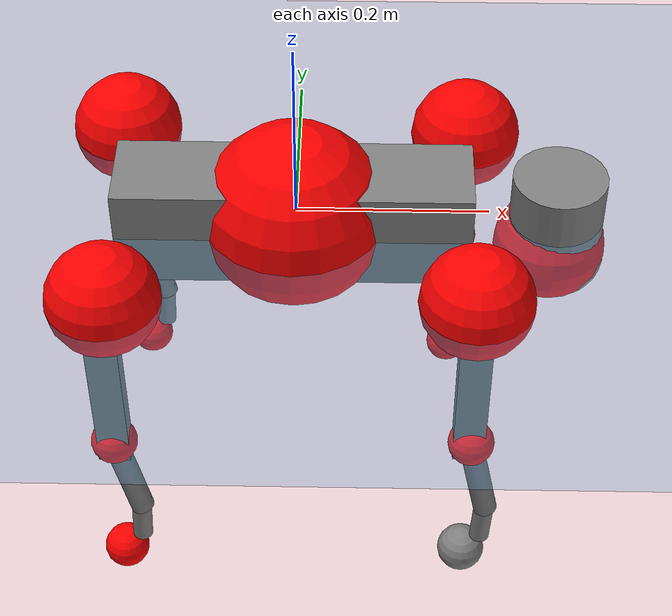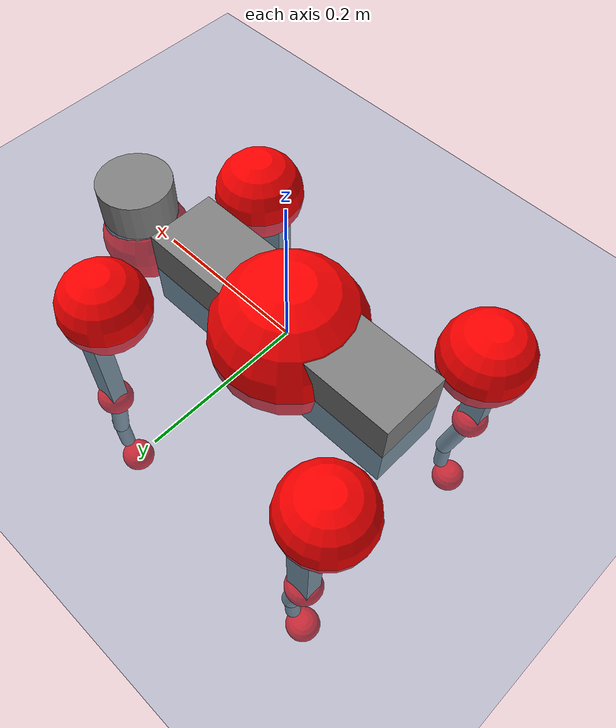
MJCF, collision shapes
<mujoco model="go2">
  <compiler angle="radian" assetdir="assets" balanceinertia="true" inertiafromgeom="false"/>

  <option timestep="0.005" density="1.2" viscosity="2e-05"/>

  <size nkey="1"/>

  <visual>
    <quality shadowsize="8192"/>
    <map shadowclip="0.5"/>
  </visual>

  <default>
    <default class="/">
      <geom contype="0" conaffinity="0" group="1" solref="-1000 -80"/>
      <site size="0.01 0.005 0.005" group="5"/>
      <general forcelimited="true" biastype="affine" gainprm="20" biasprm="0 -20 -0.5"/>
      <default class="go2">
        <joint armature="0.01" damping="0.01" frictionloss="0.2"/>
        <geom condim="1" margin="0.001"/>
        <default class="visual">
          <geom type="mesh" group="2"/>
        </default>
        <default class="collision">
          <geom group="3"/>
          <default class="foot">
            <geom size="0.022 0 0" condim="6" priority="1" friction="0.8 0.02 0.01" solimp="0.015 1 0.022"/>
          </default>
        </default>
        <default class="reward_collision_sphere">
          <geom group="5" rgba="1 0 0 1"/>
        </default>
      </default>
    </default>
  </default>

  <asset>
    <texture type="skybox" colorspace="auto" name="//unnamed_texture_0" builtin="gradient" rgb1="0.95 0.95 0.95" rgb2="0.95 0.95 0.95" width="100" height="600"/>
    <texture type="2d" colorspace="auto" name="texplane" builtin="checker" rgb1="0.345 0.575 0.748" rgb2="0.345 0.575 0.748" markrgb="1 1 1" width="512" height="512"/>
    <material name="MatPlane" class="/" texture="texplane" texuniform="true" texrepeat="2 2" specular="0.9"/>
    <material name="metal" class="/" rgba="0.9 0.95 0.95 1"/>
    <material name="black" class="/" rgba="0 0 0 1"/>
    <material name="white" class="/"/>
    <material name="gray" class="/" rgba="0.671705 0.692426 0.77427 1"/>
    <mesh name="base_0" class="/" file="base_0.obj"/>
    <mesh name="base_1" class="/" file="base_1.obj"/>
    <mesh name="base_2" class="/" file="base_2.obj"/>
    <mesh name="base_3" class="/" file="base_3.obj"/>
    <mesh name="base_4" class="/" file="base_4.obj"/>
    <mesh name="hip_0" class="/" file="hip_0.obj"/>
    <mesh name="hip_1" class="/" file="hip_1.obj"/>
    <mesh name="thigh_0" class="/" file="thigh_0.obj"/>
    <mesh name="thigh_1" class="/" file="thigh_1.obj"/>
    <mesh name="thigh_mirror_0" class="/" file="thigh_mirror_0.obj"/>
    <mesh name="thigh_mirror_1" class="/" file="thigh_mirror_1.obj"/>
    <mesh name="calf_0" class="/" file="calf_0.obj"/>
    <mesh name="calf_1" class="/" file="calf_1.obj"/>
    <mesh name="calf_mirror_0" class="/" file="calf_mirror_0.obj"/>
    <mesh name="calf_mirror_1" class="/" file="calf_mirror_1.obj"/>
    <mesh name="foot" class="/" file="foot.obj"/>
  </asset>

  <worldbody>
    <geom name="floor" class="/" size="100 100 0.125" type="plane" group="0" material="MatPlane"/>
    <light name="toplight_shadow" class="/" pos="0 0 5" dir="0.0990148 0.0990148 -0.990148" type="directional" ambient="0.04 0.04 0.04" diffuse="0.55 0.55 0.55" specular="0.12 0.12 0.12"/>
    <light name="toplight_fill" class="/" pos="0 0 5" dir="0.0990148 0.0990148 -0.990148" type="directional" castshadow="false" ambient="0.04 0.04 0.04" diffuse="0.3 0.3 0.3" specular="0.08 0.08 0.08"/>
    <body name="trunk" childclass="go2" pos="-0.00165419 -0.00283819 -0.00165935" quat="0.999999 0.000691468 -0.000237631 -0.00109433">
      <inertial pos="0.018725 0.000732795 -0.00463503" quat="0.00415034 0.709321 0.000843974 0.704873" mass="6.47662" diaginertia="0.083077 0.178937 0.0107017"/>
      <joint name="//unnamed_joint_0" type="free" armature="0" damping="0" frictionloss="0"/>
      <geom name="//unnamed_geom_1" class="visual" material="black" mesh="base_0"/>
      <geom name="//unnamed_geom_2" class="visual" material="black" mesh="base_1"/>
      <geom name="//unnamed_geom_3" class="visual" material="black" mesh="base_2"/>
      <geom name="//unnamed_geom_4" class="visual" material="white" mesh="base_3"/>
      <geom name="//unnamed_geom_5" class="visual" material="gray" mesh="base_4"/>
      <geom name="trunk_1" class="collision" size="0.183486 0.0456031 0.0556017" type="box"/>
      <geom name="trunk_2" class="collision" size="0.0487734 0.0438961" pos="0.271406 0 0.00843108" type="cylinder"/>
      <geom name="trunk_3" class="collision" size="0.045847" pos="0.279024 0 -0.0505865"/>
      <geom name="//unnamed_geom_9" class="reward_collision_sphere" size="0.0975468"/>
      <geom name="//unnamed_geom_10" class="reward_collision_sphere" size="0.0585281" pos="0.266644 0 -0.0379399"/>
      <site name="imu" pos="-0.02525 0.00709823 0.0331797" size="0.00975468"/>
      <camera name="track" pos="0 -2.26199 0" quat="0.707107 0.707107 0 0" mode="trackcom"/>
      <camera name="ego_camera" pos="0.297118 0 0.0379399" quat="-0.5 -0.5 0.5 0.5"/>
      <body name="FL_hip" pos="0.181195 0.0499259 0.00324428" quat="1 0.000322384 -0.000656576 0.000237836">
        <inertial pos="-0.00639183 5.86407e-05 -0.00271553" quat="0.497116 0.501816 0.505437 0.495571" mass="0.655493" diaginertia="0.000719296 0.00110769 0.000217238"/>
        <joint name="FL_hip_joint" pos="0 0 0" axis="0.999962 -0.00246285 0.00839516" range="-1.03191 1.00103" armature="0.0110995" damping="0" frictionloss="0.213726"/>
        <geom name="//unnamed_geom_11" class="visual" material="metal" mesh="hip_0"/>
        <geom name="//unnamed_geom_12" class="visual" material="gray" mesh="hip_1"/>
        <geom name="//unnamed_geom_13" class="collision" size="0.0448715 0.0195094" pos="0 0.0904796 0" quat="0.707107 0.707107 0 0" type="cylinder"/>
        <geom name="//unnamed_geom_14" class="reward_collision_sphere" size="0.0585281" pos="0 0.0791697 0"/>
        <body name="FL_thigh" pos="-0.0012411 0.107784 0.00315842" quat="1 5.54456e-06 -0.00040748 -0.000105281">
          <inertial pos="-0.00196074 -0.0261581 -0.0253526" quat="0.830114 0.0809988 -0.0174782 0.551402" mass="1.0727" diaginertia="0.00475104 0.0109396 0.000369259"/>
          <joint name="FL_thigh_joint" pos="0 0 0" axis="0.0132684 0.999899 0.00502973" stiffness="0.0027352" range="-1.62049 3.54508" armature="0.0111519" damping="0" frictionloss="0.218003"/>
          <geom name="//unnamed_geom_15" class="visual" material="metal" mesh="thigh_0"/>
          <geom name="//unnamed_geom_16" class="visual" material="gray" mesh="thigh_1"/>
          <geom name="//unnamed_geom_17" class="collision" size="0.103887 0.0119495 0.016583" pos="0 0 -0.089791" quat="0.707107 0 0.707107 0" type="box"/>
          <body name="FL_calf" pos="-0.000898521 -0.000257524 -0.179202" quat="0.999999 0.00113223 -0.000663387 0.000385544">
            <inertial pos="0.0086701 0.00202092 -0.121862" quat="0.71084 0.00691072 -0.0146439 0.703167" mass="0.225967" diaginertia="0.00115288 0.00279334 2.18613e-05"/>
            <joint name="FL_calf_joint" pos="0 0 0" axis="-0.000567873 1 -0.000722803" stiffness="0.00220647" range="-2.70042 -0.888421" armature="0.00836842" damping="0.00759639" frictionloss="0.204118"/>
            <geom name="//unnamed_geom_18" class="visual" material="gray" mesh="calf_0"/>
            <geom name="//unnamed_geom_19" class="visual" material="black" mesh="calf_1"/>
            <geom name="FL_calf0" class="collision" size="0.0117056 0.0585281" pos="0.00761841 0 -0.0505865" quat="0.994493 0 -0.104807 0" type="cylinder"/>
            <geom name="//unnamed_geom_21" class="collision" size="0.0107302 0.0317027" pos="0.019046 0 -0.12478" quat="0.999688 0 0.0249974 0" type="cylinder"/>
            <geom name="//unnamed_geom_22" class="visual" pos="0 0 -0.179582" quat="1 0 0 0" material="black" mesh="foot"/>
            <geom name="FL_foot" class="foot" size="0.0199794" pos="-0.0019046 0 -0.179582"/>
            <geom name="//unnamed_geom_24" class="reward_collision_sphere" size="0.0243867"/>
            <geom name="//unnamed_geom_25" class="reward_collision_sphere" size="0.0243867" pos="-0.0019046 0 -0.179582"/>
            <site name="FL_foot" class="foot" pos="-0.0019046 0 -0.179582" size="0.00975468"/>
          </body>
        </body>
      </body>
      <body name="FR_hip" pos="0.184849 -0.0505028 0.00182762" quat="1 -0.000268689 0.000740694 -0.000135248">
        <inertial pos="-0.00245528 -0.00178795 -0.000252254" quat="0.498978 0.504897 0.501233 0.494839" mass="0.655774" diaginertia="0.000724133 0.00114429 0.000204322"/>
        <joint name="FR_hip_joint" pos="0 0 0" axis="0.999989 -0.000377756 -0.00457631" range="-0.996202 1.05308" armature="0.00912113" damping="0.00886465" frictionloss="0.210355"/>
        <geom name="//unnamed_geom_26" class="visual" pos="0 2.50795e-09 1.07571e-07" quat="4.63268e-05 1 0 0" material="metal" mesh="hip_0"/>
        <geom name="//unnamed_geom_27" class="visual" pos="0 4.06569e-09 -2.66065e-07" quat="4.63268e-05 1 0 0" material="gray" mesh="hip_1"/>
        <geom name="//unnamed_geom_28" class="collision" size="0.0448715 0.0195094" pos="0 -0.0904796 0" quat="0.707107 0.707107 0 0" type="cylinder"/>
        <geom name="//unnamed_geom_29" class="reward_collision_sphere" size="0.0585281" pos="0 -0.0791697 0"/>
        <body name="FR_thigh" pos="-8.02389e-05 -0.10822 0.0024842" quat="0.999999 0.00065135 -0.000703848 -0.000465519">
          <inertial pos="-0.00627738 0.0239955 -0.0281533" quat="0.551939 -0.0243396 0.0862968 0.82905" mass="1.03602" diaginertia="0.0046074 0.0103539 0.000355558"/>
          <joint name="FR_thigh_joint" pos="0 0 0" axis="0.0100273 -0.99995 -8.03911e-05" stiffness="0.00403377" range="-3.50619 1.53482" armature="0.00968714" damping="0.0162454" frictionloss="0.214203"/>
          <geom name="//unnamed_geom_30" class="visual" material="metal" mesh="thigh_mirror_0"/>
          <geom name="//unnamed_geom_31" class="visual" material="gray" mesh="thigh_mirror_1"/>
          <geom name="//unnamed_geom_32" class="collision" size="0.103887 0.0119495 0.016583" pos="0 0 -0.089791" quat="0.707107 0 0.707107 0" type="box"/>
          <body name="FR_calf" pos="0.00265725 -0.00222918 -0.177876" quat="1 -0.000100222 1.17154e-05 5.37161e-05">
            <inertial pos="0.00847196 0.000992296 -0.120178" quat="0.700448 -0.00571486 0.0022546 0.713677" mass="0.232491" diaginertia="0.00124166 0.00269713 2.31968e-05"/>
            <joint name="FR_calf_joint" pos="0 0 0" axis="0.00225405 -0.999973 -0.0070612" range="0.838335 2.73733" armature="0.00935646" damping="0.0227361" frictionloss="0.197388"/>
            <geom name="//unnamed_geom_33" class="visual" material="gray" mesh="calf_mirror_0"/>
            <geom name="//unnamed_geom_34" class="visual" material="black" mesh="calf_mirror_1"/>
            <geom name="FR_calf0" class="collision" size="0.0126811 0.0585281" pos="0.00952301 0 -0.0505865" quat="0.995004 0 -0.0998334 0" type="cylinder"/>
            <geom name="//unnamed_geom_36" class="collision" size="0.0107302 0.0317027" pos="0.019046 0 -0.12478" quat="0.999688 0 0.0249974 0" type="cylinder"/>
            <geom name="//unnamed_geom_37" class="visual" pos="0 0 -0.179582" quat="1 0 0 0" material="black" mesh="foot"/>
            <geom name="FR_foot" class="foot" size="0.0256098" pos="-0.0019046 0 -0.179582"/>
            <geom name="//unnamed_geom_39" class="reward_collision_sphere" size="0.0243867"/>
            <geom name="//unnamed_geom_40" class="reward_collision_sphere" size="0.0243867" pos="-0.0019046 0 -0.179582"/>
            <site name="FR_foot" class="foot" pos="-0.0019046 0 -0.179582" size="0.00975468"/>
          </body>
        </body>
      </body>
      <body name="RL_hip" pos="-0.185804 0.0543414 0.00305183" quat="1 -0.00018585 -0.000217104 7.66367e-05">
        <inertial pos="0.00715376 0.00330456 -0.000969731" quat="0.505507 0.498279 0.496944 0.499226" mass="0.623606" diaginertia="0.000687048 0.00113217 0.000201928"/>
        <joint name="RL_hip_joint" pos="0 0 0" axis="-0.999743 -0.02268 -0.000362361" stiffness="0.0124516" range="-1.03612 1.02543" armature="0.00982633" damping="0.0115715" frictionloss="0.210458"/>
        <geom name="//unnamed_geom_41" class="visual" pos="-9.51244e-10 0 -1.86466e-07" quat="4.63268e-05 0 1 0" material="metal" mesh="hip_0"/>
        <geom name="//unnamed_geom_42" class="visual" pos="-1.54208e-09 0 -1.65369e-07" quat="4.63268e-05 0 1 0" material="gray" mesh="hip_1"/>
        <geom name="//unnamed_geom_43" class="collision" size="0.0448715 0.0195094" pos="0 0.0904796 0" quat="0.707107 0.707107 0 0" type="cylinder"/>
        <geom name="//unnamed_geom_44" class="reward_collision_sphere" size="0.0585281" pos="0 0.0791697 0"/>
        <body name="RL_thigh" pos="-0.00142299 0.110181 0.00268112" quat="1 0.000752532 -0.000125989 -0.000324719">
          <inertial pos="-0.00354914 -0.0243104 -0.0269984" quat="0.831645 0.0822376 -0.00914711 0.549108" mass="1.03733" diaginertia="0.00470464 0.0104612 0.000380326"/>
          <joint name="RL_thigh_joint" pos="0 0 0" axis="-0.0113253 0.999931 0.00309759" range="-0.504565 4.56272" armature="0.0085101" damping="8.94598e-05" frictionloss="0.182455"/>
          <geom name="//unnamed_geom_45" class="visual" material="metal" mesh="thigh_0"/>
          <geom name="//unnamed_geom_46" class="visual" material="gray" mesh="thigh_1"/>
          <geom name="//unnamed_geom_47" class="collision" size="0.103887 0.0119495 0.016583" pos="0 0 -0.089791" quat="0.707107 0 0.707107 0" type="box"/>
          <body name="RL_calf" pos="0.000367814 -0.00104802 -0.176546" quat="1 0.000189363 0.000259804 0.000180613">
            <inertial pos="0.00593894 -0.000478493 -0.116561" quat="0.710338 0.00158679 -0.00385667 0.703848" mass="0.224998" diaginertia="0.00116818 0.00271295 2.30106e-05"/>
            <joint name="RL_calf_joint" pos="0 0 0" axis="-0.00463768 0.999985 -0.0028865" range="-2.73167 -0.838808" armature="0.00887447" damping="0" frictionloss="0.19642"/>
            <geom name="//unnamed_geom_48" class="visual" material="gray" mesh="calf_0"/>
            <geom name="//unnamed_geom_49" class="visual" material="black" mesh="calf_1"/>
            <geom name="RL_calf0" class="collision" size="0.0126811 0.0585281" pos="0.00952301 0 -0.0505865" quat="0.995004 0 -0.0998334 0" type="cylinder"/>
            <geom name="//unnamed_geom_51" class="collision" size="0.0107302 0.0317027" pos="0.019046 0 -0.12478" quat="0.999688 0 0.0249974 0" type="cylinder"/>
            <geom name="//unnamed_geom_52" class="visual" pos="0 0 -0.179582" quat="1 0 0 0" material="black" mesh="foot"/>
            <geom name="RL_foot" class="foot" size="0.0217869" pos="-0.0019046 0 -0.179582"/>
            <geom name="//unnamed_geom_54" class="reward_collision_sphere" size="0.0243867"/>
            <geom name="//unnamed_geom_55" class="reward_collision_sphere" size="0.0243867" pos="-0.0019046 0 -0.179582"/>
            <site name="RL_foot" class="foot" pos="-0.0019046 0 -0.179582" size="0.00975468"/>
          </body>
        </body>
      </body>
      <body name="RR_hip" pos="-0.184054 -0.0534807 0.00200619" quat="0.999999 0.000839408 -0.00110585 0.000750533">
        <inertial pos="0.00547387 0.000527245 -0.000871896" quat="0.494191 0.503046 0.502712 0.500001" mass="0.629219" diaginertia="0.000714543 0.00113981 0.000199751"/>
        <joint name="RR_hip_joint" pos="0 0 0" axis="-0.999986 0.00530179 0.000903659" stiffness="0.00529036" range="-1.06042 1.04504" armature="0.0107062" damping="0.0129084" frictionloss="0.17199"/>
        <geom name="//unnamed_geom_56" class="visual" pos="9.57431e-10 2.50795e-09 -2.94037e-07" quat="2.14617e-09 4.63268e-05 4.63268e-05 -1" material="metal" mesh="hip_0"/>
        <geom name="//unnamed_geom_57" class="visual" pos="1.52678e-09 4.06569e-09 1.00696e-07" quat="2.14617e-09 4.63268e-05 4.63268e-05 -1" material="gray" mesh="hip_1"/>
        <geom name="//unnamed_geom_58" class="collision" size="0.0448715 0.0195094" pos="0 -0.0904796 0" quat="0.707107 0.707107 0 0" type="cylinder"/>
        <geom name="//unnamed_geom_59" class="reward_collision_sphere" size="0.0585281" pos="0 -0.0791697 0"/>
        <body name="RR_thigh" pos="-0.00121741 -0.109403 -0.00232576" quat="0.999999 -0.000719552 0.00048219 -0.000724376">
          <inertial pos="-0.00338695 0.0230879 -0.0281798" quat="0.55249 -0.0220273 0.0839426 0.828989" mass="1.0193" diaginertia="0.00446638 0.0105379 0.000357622"/>
          <joint name="RR_thigh_joint" pos="0 0 0" axis="-0.000960207 -0.999999 -0.000580045" range="-4.57911 0.579768" armature="0.0109677" damping="0.0122294" frictionloss="0.190834"/>
          <geom name="//unnamed_geom_60" class="visual" material="metal" mesh="thigh_mirror_0"/>
          <geom name="//unnamed_geom_61" class="visual" material="gray" mesh="thigh_mirror_1"/>
          <geom name="//unnamed_geom_62" class="collision" size="0.103887 0.0119495 0.016583" pos="0 0 -0.089791" quat="0.707107 0 0.707107 0" type="box"/>
          <body name="RR_calf" pos="-0.000819427 0.0025263 -0.17912" quat="1 -0.000386265 -0.000334799 0.000368433">
            <inertial pos="0.00681491 0.000111452 -0.116841" quat="0.705319 -0.0115355 0.00504504 0.708778" mass="0.22316" diaginertia="0.00118268 0.00256488 2.30089e-05"/>
            <joint name="RR_calf_joint" pos="0 0 0" axis="-0.00700121 -0.999938 0.00867944" stiffness="0.00123842" range="0.893797 2.73932" armature="0.00828986" damping="0.0106859" frictionloss="0.199826"/>
            <geom name="//unnamed_geom_63" class="visual" material="gray" mesh="calf_mirror_0"/>
            <geom name="//unnamed_geom_64" class="visual" material="black" mesh="calf_mirror_1"/>
            <geom name="RR_calf0" class="collision" size="0.0126811 0.0585281" pos="0.00952301 0 -0.0505865" quat="0.995004 0 -0.0998334 0" type="cylinder"/>
            <geom name="//unnamed_geom_66" class="collision" size="0.0107302 0.0317027" pos="0.019046 0 -0.12478" quat="0.999688 0 0.0249974 0" type="cylinder"/>
            <geom name="//unnamed_geom_67" class="visual" pos="0 0 -0.179582" quat="1 0 0 0" material="black" mesh="foot"/>
            <geom name="RR_foot" class="foot" size="0.0227536" pos="-0.0019046 0 -0.179582"/>
            <geom name="//unnamed_geom_69" class="reward_collision_sphere" size="0.0243867"/>
            <geom name="//unnamed_geom_70" class="reward_collision_sphere" size="0.0243867" pos="-0.0019046 0 -0.179582"/>
            <site name="RR_foot" class="foot" pos="-0.0019046 0 -0.179582" size="0.00975468"/>
          </body>
        </body>
      </body>
    </body>
  </worldbody>

  <contact>
    <pair class="/" geom1="floor" geom2="FL_foot" name="//unnamed_contact_0"/>
    <pair class="/" geom1="floor" geom2="FR_foot" name="//unnamed_contact_1"/>
    <pair class="/" geom1="floor" geom2="RL_foot" name="//unnamed_contact_2"/>
    <pair class="/" geom1="floor" geom2="RR_foot" name="//unnamed_contact_3"/>
  </contact>

  <actuator>
    <general name="FL_hip" class="/" joint="FL_hip_joint" forcerange="-23.9225 23.9225" gainprm="19.5367" biasprm="0 -19.5367 -0.488155"/>
    <general name="FL_thigh" class="/" joint="FL_thigh_joint" forcerange="-21.0133 21.0133" gainprm="19.5367" biasprm="0 -19.5367 -0.488155"/>
    <general name="FL_calf" class="/" joint="FL_calf_joint" forcerange="-43.9746 43.9746" gainprm="19.5367" biasprm="0 -19.5367 -0.488155"/>
    <general name="FR_hip" class="/" joint="FR_hip_joint" forcerange="-24.0145 24.0145" gainprm="19.5367" biasprm="0 -19.5367 -0.488155"/>
    <general name="FR_thigh" class="/" joint="FR_thigh_joint" forcerange="-23.4059 23.4059" gainprm="19.5367" biasprm="0 -19.5367 -0.488155"/>
    <general name="FR_calf" class="/" joint="FR_calf_joint" forcerange="-39.4411 39.4411" gainprm="19.5367" biasprm="0 -19.5367 -0.488155"/>
    <general name="RL_hip" class="/" joint="RL_hip_joint" forcerange="-23.9915 23.9915" gainprm="19.5367" biasprm="0 -19.5367 -0.488155"/>
    <general name="RL_thigh" class="/" joint="RL_thigh_joint" forcerange="-24.0301 24.0301" gainprm="19.5367" biasprm="0 -19.5367 -0.488155"/>
    <general name="RL_calf" class="/" joint="RL_calf_joint" forcerange="-42.1506 42.1506" gainprm="19.5367" biasprm="0 -19.5367 -0.488155"/>
    <general name="RR_hip" class="/" joint="RR_hip_joint" forcerange="-22.3128 22.3128" gainprm="19.5367" biasprm="0 -19.5367 -0.488155"/>
    <general name="RR_thigh" class="/" joint="RR_thigh_joint" forcerange="-22.3426 22.3426" gainprm="19.5367" biasprm="0 -19.5367 -0.488155"/>
    <general name="RR_calf" class="/" joint="RR_calf_joint" forcerange="-47.7123 47.7123" gainprm="19.5367" biasprm="0 -19.5367 -0.488155"/>
  </actuator>

  <sensor>
    <gyro site="imu" name="imu_angular_velocity"/>
    <velocimeter site="imu" name="imu_linear_velocity"/>
    <framelinvel objtype="site" objname="FL_foot" name="FL_foot_global_linear_velocity"/>
    <framelinvel objtype="site" objname="FR_foot" name="FR_foot_global_linear_velocity"/>
    <framelinvel objtype="site" objname="RL_foot" name="RL_foot_global_linear_velocity"/>
    <framelinvel objtype="site" objname="RR_foot" name="RR_foot_global_linear_velocity"/>
  </sensor>

  <keyframe>
    <key name="home" qpos="0 0 0.325 1 0 0 0 0.1 0.8 -1.5 -0.1 -0.8 1.5 -0.1 0.8 -1.5 0.1 -0.8 1.5"/>
  </keyframe>
</mujoco>
